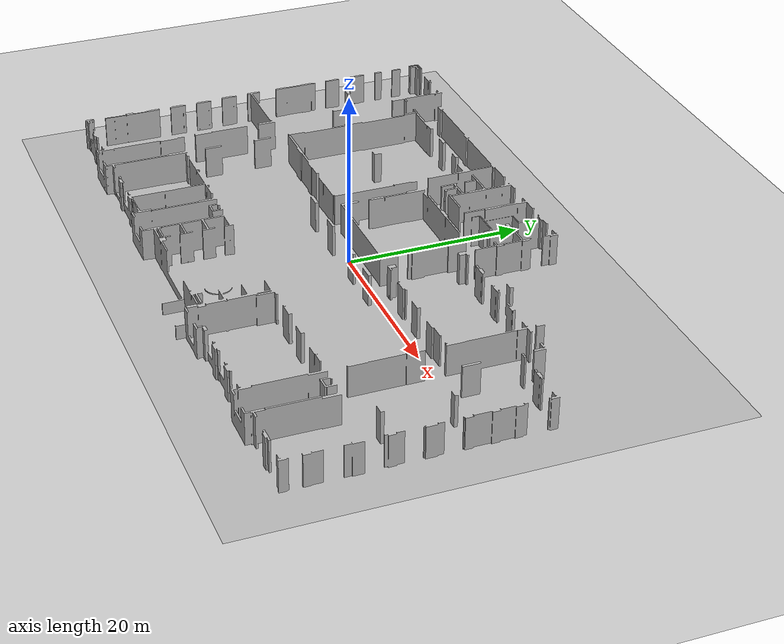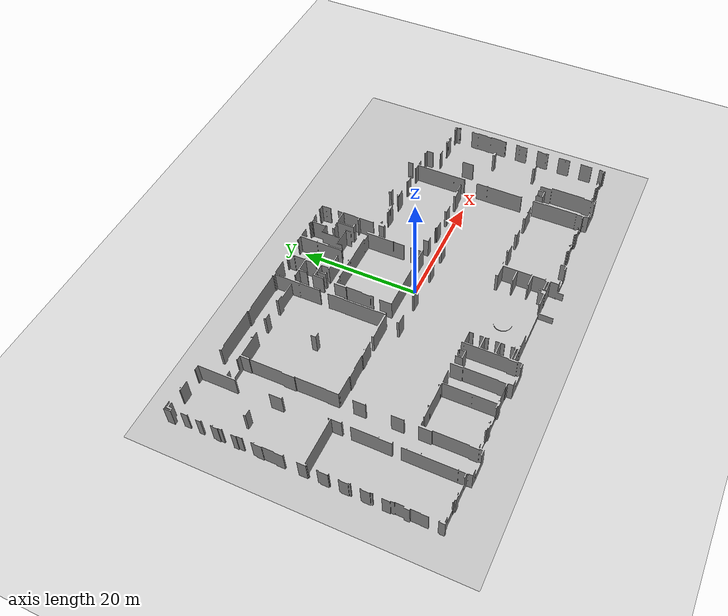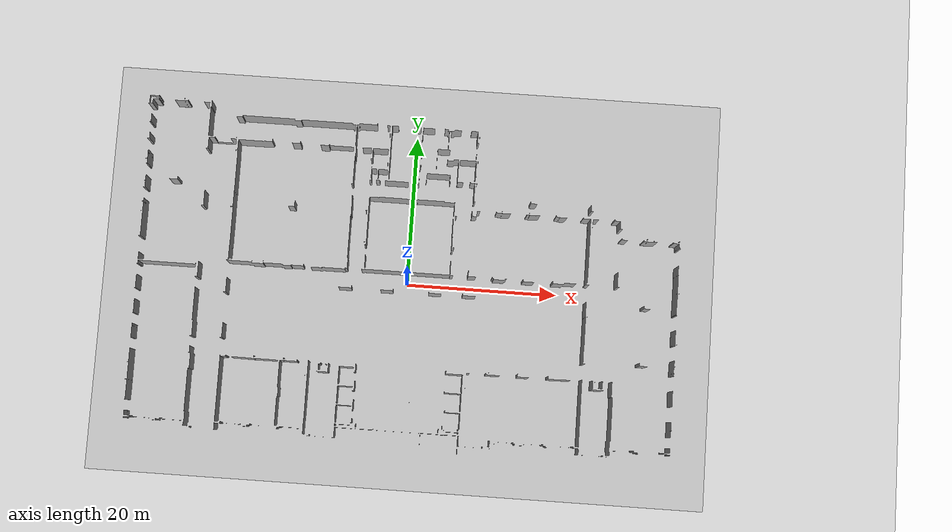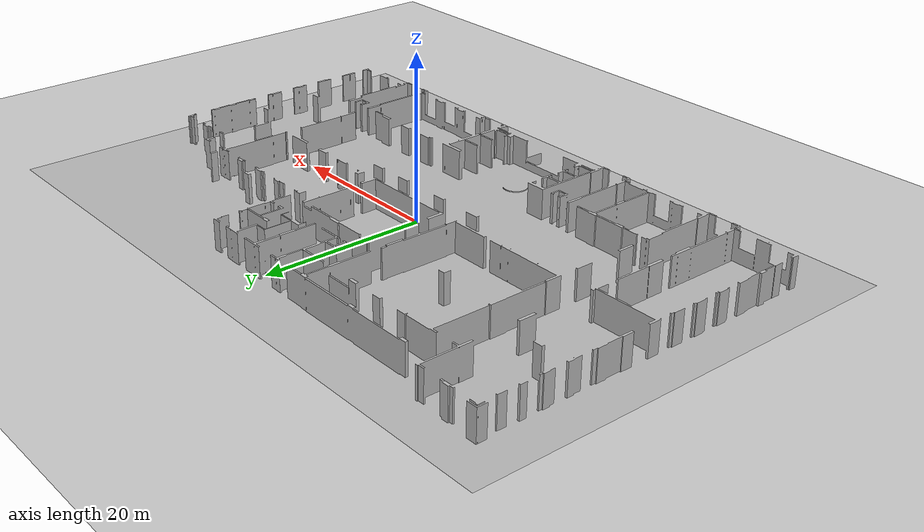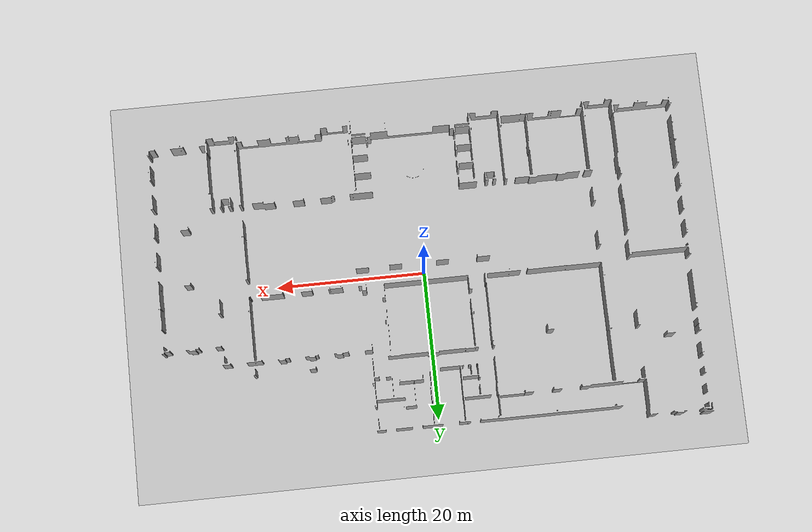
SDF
<?xml version="1.0" ?>
<sdf version="1.6">
  <world name="eleventh_floor">

    <!-- ========================== PHYSICS ========================== -->
    <physics type="ode">
      <max_step_size>0.001</max_step_size>
      <real_time_factor>1.0</real_time_factor>
    </physics>

    <!-- ========================== LIGHT ========================== -->
    <include>
      <uri>model://sun</uri>
    </include>

    <!-- ========================== GROUND PLANE ========================== -->
    <include>
      <uri>model://ground_plane</uri>
    </include>

    <model name="college_floor">
      <static>true</static>
      <pose>0 0 0.01 1.5708 0 0</pose>
      <link name="link">
        <collision name="collision">
          <geometry>
            <mesh>
              <uri>model://my_robot_description/meshes/MainWallsFile.obj</uri>
              <!-- Scaling factor if needed -->
              <scale>1 1 1</scale>
            </mesh>
          </geometry>
        </collision>
        <visual name="visual">
          <geometry>
            <mesh>
              <uri>model://my_robot_description/meshes/MainWallsFile.obj</uri>
              <scale>1 1 1</scale>
            </mesh>
          </geometry>
        </visual>
      </link>
    </model>

  </world>
</sdf>
